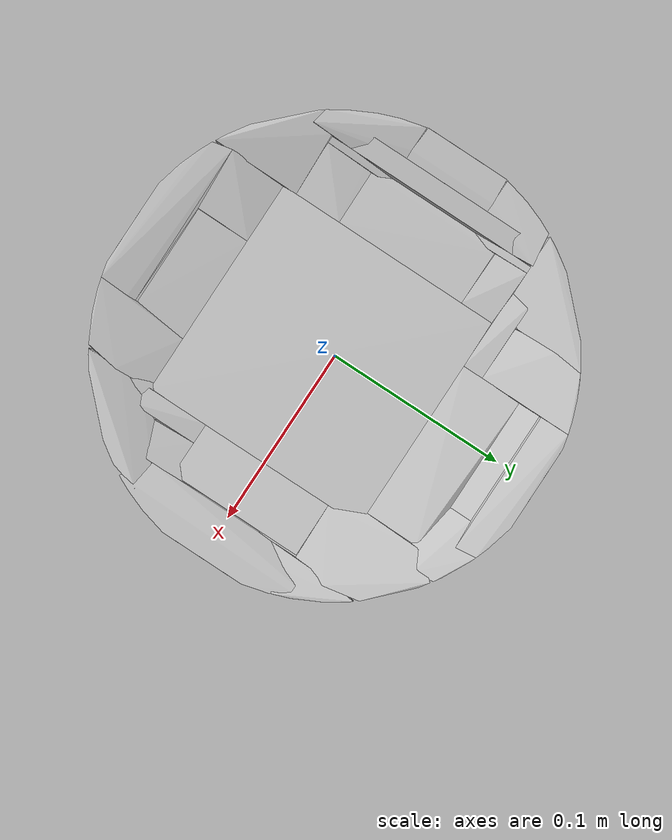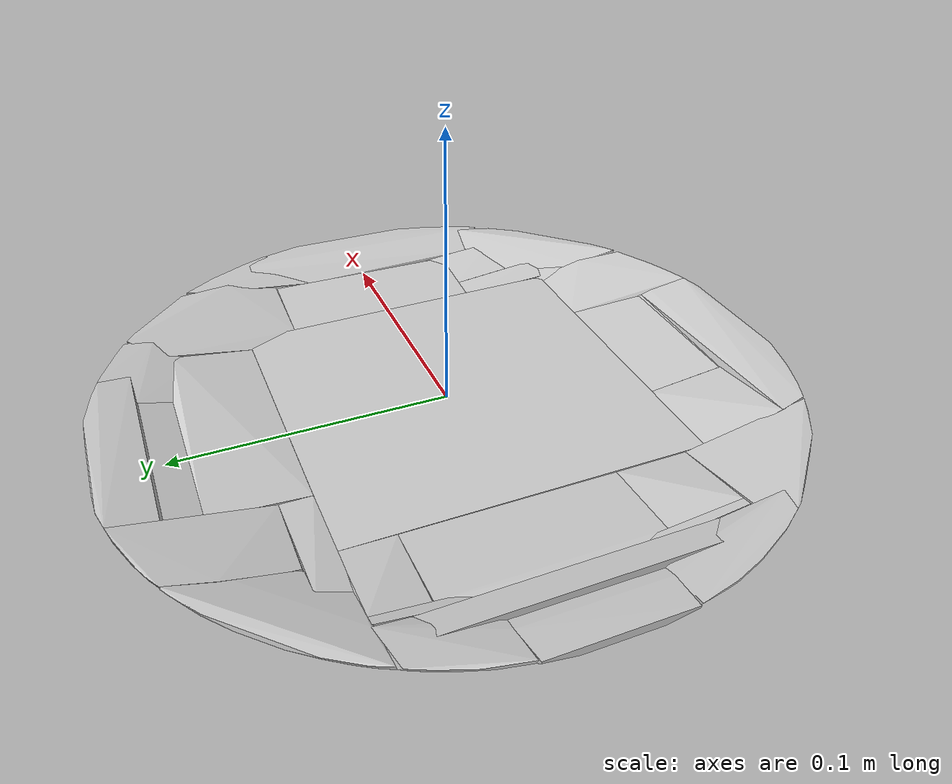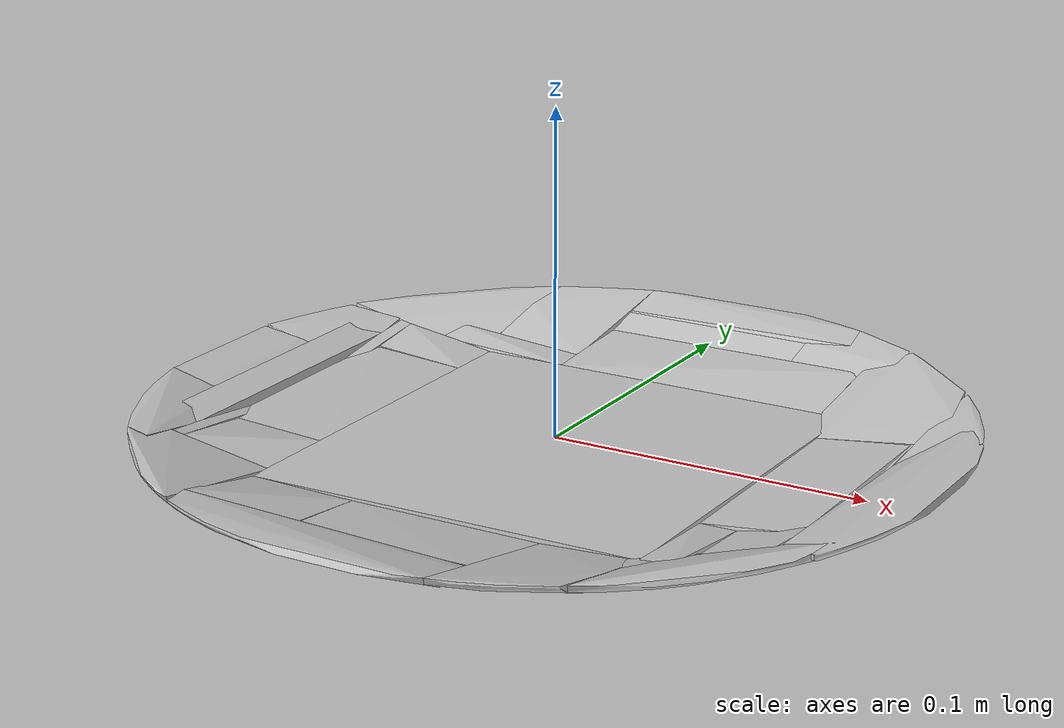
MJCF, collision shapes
<mujoco model="plate_23">
  <compiler angle="radian" autolimits="true" meshdir="."/>
  <asset>
    <mesh file="visual/model_normalized_0.obj" name="plate_11_normalized_0_vis" scale="0.24975 0.24975 0.24975" refquat="1.0 0.0 0.0 0.0" />
    <mesh file="collision/model_normalized_collision_22.obj" name="plate_11_normalized_collision_22._coll" scale="0.24975 0.24975 0.24975" refquat="1.0 0.0 0.0 0.0" />
    <mesh file="collision/model_normalized_collision_23.obj" name="plate_11_normalized_collision_23._coll" scale="0.24975 0.24975 0.24975" refquat="1.0 0.0 0.0 0.0" />
    <mesh file="collision/model_normalized_collision_21.obj" name="plate_11_normalized_collision_21._coll" scale="0.24975 0.24975 0.24975" refquat="1.0 0.0 0.0 0.0" />
    <mesh file="collision/model_normalized_collision_20.obj" name="plate_11_normalized_collision_20._coll" scale="0.24975 0.24975 0.24975" refquat="1.0 0.0 0.0 0.0" />
    <mesh file="collision/model_normalized_collision_24.obj" name="plate_11_normalized_collision_24._coll" scale="0.24975 0.24975 0.24975" refquat="1.0 0.0 0.0 0.0" />
    <mesh file="collision/model_normalized_collision_30.obj" name="plate_11_normalized_collision_30._coll" scale="0.24975 0.24975 0.24975" refquat="1.0 0.0 0.0 0.0" />
    <mesh file="collision/model_normalized_collision_18.obj" name="plate_11_normalized_collision_18._coll" scale="0.24975 0.24975 0.24975" refquat="1.0 0.0 0.0 0.0" />
    <mesh file="collision/model_normalized_collision_19.obj" name="plate_11_normalized_collision_19._coll" scale="0.24975 0.24975 0.24975" refquat="1.0 0.0 0.0 0.0" />
    <mesh file="collision/model_normalized_collision_31.obj" name="plate_11_normalized_collision_31._coll" scale="0.24975 0.24975 0.24975" refquat="1.0 0.0 0.0 0.0" />
    <mesh file="collision/model_normalized_collision_25.obj" name="plate_11_normalized_collision_25._coll" scale="0.24975 0.24975 0.24975" refquat="1.0 0.0 0.0 0.0" />
    <mesh file="collision/model_normalized_collision_27.obj" name="plate_11_normalized_collision_27._coll" scale="0.24975 0.24975 0.24975" refquat="1.0 0.0 0.0 0.0" />
    <mesh file="collision/model_normalized_collision_26.obj" name="plate_11_normalized_collision_26._coll" scale="0.24975 0.24975 0.24975" refquat="1.0 0.0 0.0 0.0" />
    <mesh file="collision/model_normalized_collision_9.obj" name="plate_11_normalized_collision_9._coll" scale="0.24975 0.24975 0.24975" refquat="1.0 0.0 0.0 0.0" />
    <mesh file="collision/model_normalized_collision_8.obj" name="plate_11_normalized_collision_8._coll" scale="0.24975 0.24975 0.24975" refquat="1.0 0.0 0.0 0.0" />
    <mesh file="collision/model_normalized_collision_6.obj" name="plate_11_normalized_collision_6._coll" scale="0.24975 0.24975 0.24975" refquat="1.0 0.0 0.0 0.0" />
    <mesh file="collision/model_normalized_collision_7.obj" name="plate_11_normalized_collision_7._coll" scale="0.24975 0.24975 0.24975" refquat="1.0 0.0 0.0 0.0" />
    <mesh file="collision/model_normalized_collision_5.obj" name="plate_11_normalized_collision_5._coll" scale="0.24975 0.24975 0.24975" refquat="1.0 0.0 0.0 0.0" />
    <mesh file="collision/model_normalized_collision_4.obj" name="plate_11_normalized_collision_4._coll" scale="0.24975 0.24975 0.24975" refquat="1.0 0.0 0.0 0.0" />
    <mesh file="collision/model_normalized_collision_0.obj" name="plate_11_normalized_collision_0._coll" scale="0.24975 0.24975 0.24975" refquat="1.0 0.0 0.0 0.0" />
    <mesh file="collision/model_normalized_collision_1.obj" name="plate_11_normalized_collision_1._coll" scale="0.24975 0.24975 0.24975" refquat="1.0 0.0 0.0 0.0" />
    <mesh file="collision/model_normalized_collision_3.obj" name="plate_11_normalized_collision_3._coll" scale="0.24975 0.24975 0.24975" refquat="1.0 0.0 0.0 0.0" />
    <mesh file="collision/model_normalized_collision_2.obj" name="plate_11_normalized_collision_2._coll" scale="0.24975 0.24975 0.24975" refquat="1.0 0.0 0.0 0.0" />
    <mesh file="collision/model_normalized_collision_17.obj" name="plate_11_normalized_collision_17._coll" scale="0.24975 0.24975 0.24975" refquat="1.0 0.0 0.0 0.0" />
    <mesh file="collision/model_normalized_collision_16.obj" name="plate_11_normalized_collision_16._coll" scale="0.24975 0.24975 0.24975" refquat="1.0 0.0 0.0 0.0" />
    <mesh file="collision/model_normalized_collision_28.obj" name="plate_11_normalized_collision_28._coll" scale="0.24975 0.24975 0.24975" refquat="1.0 0.0 0.0 0.0" />
    <mesh file="collision/model_normalized_collision_14.obj" name="plate_11_normalized_collision_14._coll" scale="0.24975 0.24975 0.24975" refquat="1.0 0.0 0.0 0.0" />
    <mesh file="collision/model_normalized_collision_15.obj" name="plate_11_normalized_collision_15._coll" scale="0.24975 0.24975 0.24975" refquat="1.0 0.0 0.0 0.0" />
    <mesh file="collision/model_normalized_collision_29.obj" name="plate_11_normalized_collision_29._coll" scale="0.24975 0.24975 0.24975" refquat="1.0 0.0 0.0 0.0" />
    <mesh file="collision/model_normalized_collision_11.obj" name="plate_11_normalized_collision_11._coll" scale="0.24975 0.24975 0.24975" refquat="1.0 0.0 0.0 0.0" />
    <mesh file="collision/model_normalized_collision_10.obj" name="plate_11_normalized_collision_10._coll" scale="0.24975 0.24975 0.24975" refquat="1.0 0.0 0.0 0.0" />
    <mesh file="collision/model_normalized_collision_12.obj" name="plate_11_normalized_collision_12._coll" scale="0.24975 0.24975 0.24975" refquat="1.0 0.0 0.0 0.0" />
    <mesh file="collision/model_normalized_collision_13.obj" name="plate_11_normalized_collision_13._coll" scale="0.24975 0.24975 0.24975" refquat="1.0 0.0 0.0 0.0" />
    <material name="Material.387_plate_11" specular="0.5" shininess="0.359999993" rgba="0.800000 0.800000 0.800000 1.0" />
  </asset>
  <worldbody>
    <body name="body_obj_plate_11">
      <freejoint /><body name="object_plate_11">
        <geom solimp="0.998 0.998 0.001" solref="0.001 1" density="100" friction="0.95 0.3 0.1" type="mesh" mesh="plate_11_normalized_0_vis" conaffinity="0" contype="0" group="2" material="Material.387_plate_11" />
        <geom solimp="0.998 0.998 0.001" solref="0.001 1" density="100" friction="0.95 0.3 0.1" type="mesh" mesh="plate_11_normalized_collision_22._coll" group="3" rgba="0.8 0.8 0.8 0.0" />
        <geom solimp="0.998 0.998 0.001" solref="0.001 1" density="100" friction="0.95 0.3 0.1" type="mesh" mesh="plate_11_normalized_collision_23._coll" group="3" rgba="0.8 0.8 0.8 0.0" />
        <geom solimp="0.998 0.998 0.001" solref="0.001 1" density="100" friction="0.95 0.3 0.1" type="mesh" mesh="plate_11_normalized_collision_21._coll" group="3" rgba="0.8 0.8 0.8 0.0" />
        <geom solimp="0.998 0.998 0.001" solref="0.001 1" density="100" friction="0.95 0.3 0.1" type="mesh" mesh="plate_11_normalized_collision_20._coll" group="3" rgba="0.8 0.8 0.8 0.0" />
        <geom solimp="0.998 0.998 0.001" solref="0.001 1" density="100" friction="0.95 0.3 0.1" type="mesh" mesh="plate_11_normalized_collision_24._coll" group="3" rgba="0.8 0.8 0.8 0.0" />
        <geom solimp="0.998 0.998 0.001" solref="0.001 1" density="100" friction="0.95 0.3 0.1" type="mesh" mesh="plate_11_normalized_collision_30._coll" group="3" rgba="0.8 0.8 0.8 0.0" />
        <geom solimp="0.998 0.998 0.001" solref="0.001 1" density="100" friction="0.95 0.3 0.1" type="mesh" mesh="plate_11_normalized_collision_18._coll" group="3" rgba="0.8 0.8 0.8 0.0" />
        <geom solimp="0.998 0.998 0.001" solref="0.001 1" density="100" friction="0.95 0.3 0.1" type="mesh" mesh="plate_11_normalized_collision_19._coll" group="3" rgba="0.8 0.8 0.8 0.0" />
        <geom solimp="0.998 0.998 0.001" solref="0.001 1" density="100" friction="0.95 0.3 0.1" type="mesh" mesh="plate_11_normalized_collision_31._coll" group="3" rgba="0.8 0.8 0.8 0.0" />
        <geom solimp="0.998 0.998 0.001" solref="0.001 1" density="100" friction="0.95 0.3 0.1" type="mesh" mesh="plate_11_normalized_collision_25._coll" group="3" rgba="0.8 0.8 0.8 0.0" />
        <geom solimp="0.998 0.998 0.001" solref="0.001 1" density="100" friction="0.95 0.3 0.1" type="mesh" mesh="plate_11_normalized_collision_27._coll" group="3" rgba="0.8 0.8 0.8 0.0" />
        <geom solimp="0.998 0.998 0.001" solref="0.001 1" density="100" friction="0.95 0.3 0.1" type="mesh" mesh="plate_11_normalized_collision_26._coll" group="3" rgba="0.8 0.8 0.8 0.0" />
        <geom solimp="0.998 0.998 0.001" solref="0.001 1" density="100" friction="0.95 0.3 0.1" type="mesh" mesh="plate_11_normalized_collision_9._coll" group="3" rgba="0.8 0.8 0.8 0.0" />
        <geom solimp="0.998 0.998 0.001" solref="0.001 1" density="100" friction="0.95 0.3 0.1" type="mesh" mesh="plate_11_normalized_collision_8._coll" group="3" rgba="0.8 0.8 0.8 0.0" />
        <geom solimp="0.998 0.998 0.001" solref="0.001 1" density="100" friction="0.95 0.3 0.1" type="mesh" mesh="plate_11_normalized_collision_6._coll" group="3" rgba="0.8 0.8 0.8 0.0" />
        <geom solimp="0.998 0.998 0.001" solref="0.001 1" density="100" friction="0.95 0.3 0.1" type="mesh" mesh="plate_11_normalized_collision_7._coll" group="3" rgba="0.8 0.8 0.8 0.0" />
        <geom solimp="0.998 0.998 0.001" solref="0.001 1" density="100" friction="0.95 0.3 0.1" type="mesh" mesh="plate_11_normalized_collision_5._coll" group="3" rgba="0.8 0.8 0.8 0.0" />
        <geom solimp="0.998 0.998 0.001" solref="0.001 1" density="100" friction="0.95 0.3 0.1" type="mesh" mesh="plate_11_normalized_collision_4._coll" group="3" rgba="0.8 0.8 0.8 0.0" />
        <geom solimp="0.998 0.998 0.001" solref="0.001 1" density="100" friction="0.95 0.3 0.1" type="mesh" mesh="plate_11_normalized_collision_0._coll" group="3" rgba="0.8 0.8 0.8 0.0" />
        <geom solimp="0.998 0.998 0.001" solref="0.001 1" density="100" friction="0.95 0.3 0.1" type="mesh" mesh="plate_11_normalized_collision_1._coll" group="3" rgba="0.8 0.8 0.8 0.0" />
        <geom solimp="0.998 0.998 0.001" solref="0.001 1" density="100" friction="0.95 0.3 0.1" type="mesh" mesh="plate_11_normalized_collision_3._coll" group="3" rgba="0.8 0.8 0.8 0.0" />
        <geom solimp="0.998 0.998 0.001" solref="0.001 1" density="100" friction="0.95 0.3 0.1" type="mesh" mesh="plate_11_normalized_collision_2._coll" group="3" rgba="0.8 0.8 0.8 0.0" />
        <geom solimp="0.998 0.998 0.001" solref="0.001 1" density="100" friction="0.95 0.3 0.1" type="mesh" mesh="plate_11_normalized_collision_17._coll" group="3" rgba="0.8 0.8 0.8 0.0" />
        <geom solimp="0.998 0.998 0.001" solref="0.001 1" density="100" friction="0.95 0.3 0.1" type="mesh" mesh="plate_11_normalized_collision_16._coll" group="3" rgba="0.8 0.8 0.8 0.0" />
        <geom solimp="0.998 0.998 0.001" solref="0.001 1" density="100" friction="0.95 0.3 0.1" type="mesh" mesh="plate_11_normalized_collision_28._coll" group="3" rgba="0.8 0.8 0.8 0.0" />
        <geom solimp="0.998 0.998 0.001" solref="0.001 1" density="100" friction="0.95 0.3 0.1" type="mesh" mesh="plate_11_normalized_collision_14._coll" group="3" rgba="0.8 0.8 0.8 0.0" />
        <geom solimp="0.998 0.998 0.001" solref="0.001 1" density="100" friction="0.95 0.3 0.1" type="mesh" mesh="plate_11_normalized_collision_15._coll" group="3" rgba="0.8 0.8 0.8 0.0" />
        <geom solimp="0.998 0.998 0.001" solref="0.001 1" density="100" friction="0.95 0.3 0.1" type="mesh" mesh="plate_11_normalized_collision_29._coll" group="3" rgba="0.8 0.8 0.8 0.0" />
        <geom solimp="0.998 0.998 0.001" solref="0.001 1" density="100" friction="0.95 0.3 0.1" type="mesh" mesh="plate_11_normalized_collision_11._coll" group="3" rgba="0.8 0.8 0.8 0.0" />
        <geom solimp="0.998 0.998 0.001" solref="0.001 1" density="100" friction="0.95 0.3 0.1" type="mesh" mesh="plate_11_normalized_collision_10._coll" group="3" rgba="0.8 0.8 0.8 0.0" />
        <geom solimp="0.998 0.998 0.001" solref="0.001 1" density="100" friction="0.95 0.3 0.1" type="mesh" mesh="plate_11_normalized_collision_12._coll" group="3" rgba="0.8 0.8 0.8 0.0" />
        <geom solimp="0.998 0.998 0.001" solref="0.001 1" density="100" friction="0.95 0.3 0.1" type="mesh" mesh="plate_11_normalized_collision_13._coll" group="3" rgba="0.8 0.8 0.8 0.0" />
      </body>
      <site rgba="0 0 0 0" size="0.005" pos="1.8500000041610231e-09 1.8499999990262416e-09 -0.00589834945" name="bottom_site_plate_11" />
      <site rgba="0 0 0 0" size="0.005" pos="1.8500000041610231e-09 1.8499999990262416e-09 0.005789232750000001" name="top_site_plate_11" />
      <site rgba="0 0 0 0" size="0.005" pos="0.0912271556 0.09122715005 -5.45583499999998e-05" name="horizontal_radius_site_plate_11" />
    </body>
  </worldbody>
</mujoco>
